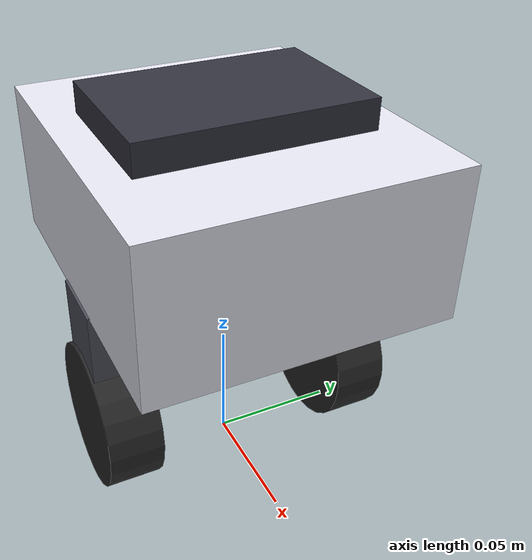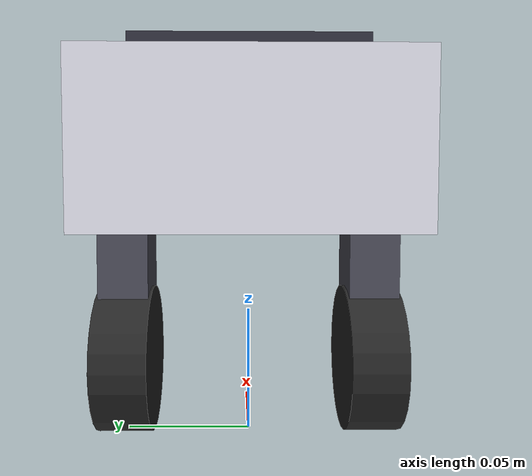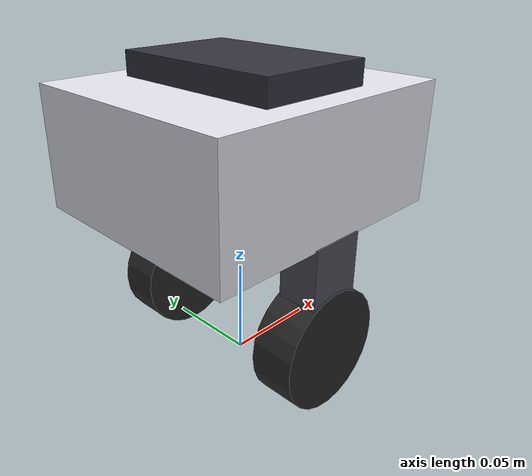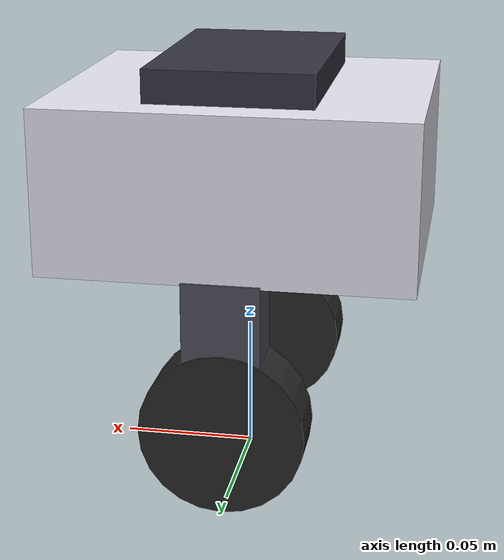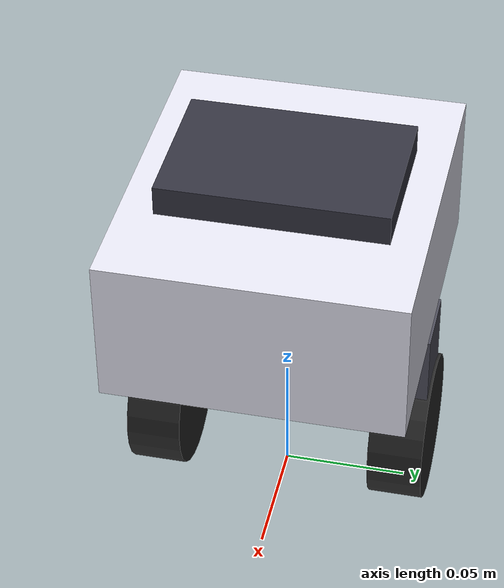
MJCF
<?xml version="1.0" ?>
<mujoco model="xgo_rider">
  <compiler angle="radian" autolimits="true"/>

  <default>
    <default class="xgo">
      <joint damping="0.04" frictionloss="0.02" armature="0.004"/>
      <geom solimp="0.9 0.95 0.001" solref="0.002 1" friction="0.7 0.02 0.002" rgba="0.9 0.9 0.95 1"/>
      <default class="visual"><geom contype="0" conaffinity="0" group="2"/></default>
      <default class="servo">
        <position kp="0.4" dampratio="1" forcerange="-0.441 0.441"/>
      </default>
    </default>
  </default>

  <worldbody>
    <body name="trunk_base" pos="0 0 0.115" childclass="xgo">
      <freejoint name="trunk_base_freejoint"/>
      <inertial pos="0 0 -0.010" mass="0.300" diaginertia="0.00055 0.00040 0.00030"/>
      <geom type="box" size="0.067 0.059 0.030" class="visual"/>
      <geom type="box" size="0.030 0.045 0.006" pos="0 0 0.036" mass="0.030" class="visual" rgba="0.2 0.2 0.25 1"/>
      <site name="imu" pos="0 0 0" size="0.005"/>

      <body name="left_upper_leg" pos="0 0.050 -0.030">
        <joint name="left_hip_pitch" type="hinge" axis="0 1 0" range="-0.9 0.9"/>
        <geom type="box" size="0.014 0.010 0.016" pos="0 0 -0.015" mass="0.050" class="visual" rgba="0.3 0.3 0.35 1"/>
        <body name="left_lower_leg" pos="0 0 -0.030">
          <joint name="left_knee_pitch" type="hinge" axis="0 1 0" range="-1.4 1.4"/>
          <geom type="box" size="0.012 0.008 0.013" pos="0 0 -0.012" mass="0.030" class="visual" rgba="0.35 0.35 0.4 1"/>
          <body name="left_wheel" pos="0 0 -0.025">
            <joint name="left_wheel" type="hinge" axis="0 1 0" damping="0.005" frictionloss="0.01" armature="0.001"/>
            <geom type="cylinder" size="0.030 0.011" quat="0.7071068 0.7071068 0 0" mass="0.045" friction="1.2 0.05 0.005" rgba="0.15 0.15 0.15 1"/>
          </body>
        </body>
      </body>

      <body name="right_upper_leg" pos="0 -0.050 -0.030">
        <joint name="right_hip_pitch" type="hinge" axis="0 1 0" range="-0.9 0.9"/>
        <geom type="box" size="0.014 0.010 0.016" pos="0 0 -0.015" mass="0.050" class="visual" rgba="0.3 0.3 0.35 1"/>
        <body name="right_lower_leg" pos="0 0 -0.030">
          <joint name="right_knee_pitch" type="hinge" axis="0 1 0" range="-1.4 1.4"/>
          <geom type="box" size="0.012 0.008 0.013" pos="0 0 -0.012" mass="0.030" class="visual" rgba="0.35 0.35 0.4 1"/>
          <body name="right_wheel" pos="0 0 -0.025">
            <joint name="right_wheel" type="hinge" axis="0 1 0" damping="0.005" frictionloss="0.01" armature="0.001"/>
            <geom type="cylinder" size="0.030 0.011" quat="0.7071068 0.7071068 0 0" mass="0.045" friction="1.2 0.05 0.005" rgba="0.15 0.15 0.15 1"/>
          </body>
        </body>
      </body>
    </body>
  </worldbody>

  <actuator>
    <position name="left_hip_pitch_ctrl"   joint="left_hip_pitch"   class="servo" ctrlrange="-0.9 0.9"/>
    <position name="left_knee_pitch_ctrl"  joint="left_knee_pitch"  class="servo" ctrlrange="-1.4 1.4"/>
    <position name="right_hip_pitch_ctrl"  joint="right_hip_pitch"  class="servo" ctrlrange="-0.9 0.9"/>
    <position name="right_knee_pitch_ctrl" joint="right_knee_pitch" class="servo" ctrlrange="-1.4 1.4"/>
    <motor name="left_wheel_motor"   joint="left_wheel"  gear="1" ctrlrange="-0.1 0.1"/>
    <motor name="right_wheel_motor"  joint="right_wheel" gear="1" ctrlrange="-0.1 0.1"/>
  </actuator>

  <sensor>
    <accelerometer site="imu" name="accel"/>
    <gyro site="imu" name="gyro"/>
    <framequat objtype="site" objname="imu" name="orientation"/>
    <jointvel joint="left_wheel" name="left_wheel_vel"/>
    <jointvel joint="right_wheel" name="right_wheel_vel"/>
  </sensor>
</mujoco>
